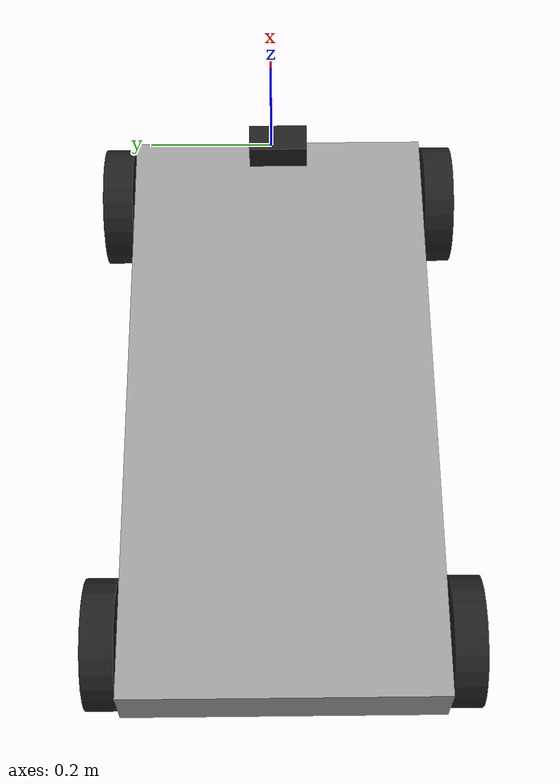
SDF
<?xml version='1.0'?>
<sdf version='1.6'>
  <model name='Robot'>
    <link name='link_0'>
      <pose frame=''>-0.395787 -0.010871 -0.185833 0 -0 0</pose>
      <inertial>
        <mass>1</mass>
        <inertia>
          <ixx>0.166667</ixx>
          <ixy>0</ixy>
          <ixz>0</ixz>
          <iyy>0.166667</iyy>
          <iyz>0</iyz>
          <izz>0.166667</izz>
        </inertia>
        <pose frame=''>0 0 0 0 -0 0</pose>
      </inertial>
      <self_collide>0</self_collide>
      <kinematic>0</kinematic>
      <gravity>1</gravity>
      <visual name='visual'>
        <pose frame=''>0 0 0 0 -0 0</pose>
        <geometry>
          <box>
            <size>1 0.5 0.1</size>
          </box>
        </geometry>
        <material>
          <lighting>1</lighting>
          <script>
            <uri>file://media/materials/scripts/gazebo.material</uri>
            <name>Gazebo/Grey</name>
          </script>
          <shader type='pixel'>
            <normal_map>__default__</normal_map>
          </shader>
          <ambient>0.5 0.5 0.5 1</ambient>
          <diffuse>0.5 0.5 0.5 1</diffuse>
          <specular>0.11 0.11 0.11 1</specular>
          <emissive>0 0 0 1</emissive>
        </material>
        <transparency>0</transparency>
        <cast_shadows>1</cast_shadows>
      </visual>
      <collision name='collision'>
        <laser_retro>0</laser_retro>
        <max_contacts>10</max_contacts>
        <pose frame=''>0 0 0 0 -0 0</pose>
        <geometry>
          <box>
            <size>1 0.5 0.1</size>
          </box>
        </geometry>
        <surface>
          <friction>
            <ode>
              <mu>1</mu>
              <mu2>1</mu2>
              <fdir1>0 0 0</fdir1>
              <slip1>0</slip1>
              <slip2>0</slip2>
            </ode>
            <torsional>
              <coefficient>1</coefficient>
              <patch_radius>0</patch_radius>
              <surface_radius>0</surface_radius>
              <use_patch_radius>1</use_patch_radius>
              <ode>
                <slip>0</slip>
              </ode>
            </torsional>
          </friction>
          <bounce>
            <restitution_coefficient>0</restitution_coefficient>
            <threshold>1e+06</threshold>
          </bounce>
          <contact>
            <collide_without_contact>0</collide_without_contact>
            <collide_without_contact_bitmask>1</collide_without_contact_bitmask>
            <collide_bitmask>1</collide_bitmask>
            <ode>
              <soft_cfm>0</soft_cfm>
              <soft_erp>0.2</soft_erp>
              <kp>1e+13</kp>
              <kd>1</kd>
              <max_vel>0.01</max_vel>
              <min_depth>0</min_depth>
            </ode>
            <bullet>
              <split_impulse>1</split_impulse>
              <split_impulse_penetration_threshold>-0.01</split_impulse_penetration_threshold>
              <soft_cfm>0</soft_cfm>
              <soft_erp>0.2</soft_erp>
              <kp>1e+13</kp>
              <kd>1</kd>
            </bullet>
          </contact>
        </surface>
      </collision>
    </link>
    <link name='link_1'>
      <pose frame=''>-0.795787 -0.285871 -0.185833 1.5708 -0 0</pose>
      <inertial>
        <mass>1</mass>
        <inertia>
          <ixx>0.145833</ixx>
          <ixy>0</ixy>
          <ixz>0</ixz>
          <iyy>0.145833</iyy>
          <iyz>0</iyz>
          <izz>0.125</izz>
        </inertia>
        <pose frame=''>0 0 0 0 -0 0</pose>
      </inertial>
      <self_collide>0</self_collide>
      <kinematic>0</kinematic>
      <visual name='visual'>
        <pose frame=''>0 0 0 0 -0 0</pose>
        <geometry>
          <cylinder>
            <radius>0.1</radius>
            <length>0.05</length>
          </cylinder>
        </geometry>
        <material>
          <lighting>1</lighting>
          <script>
            <uri>file://media/materials/scripts/gazebo.material</uri>
            <name>Gazebo/Black</name>
          </script>
          <shader type='pixel'>
            <normal_map>__default__</normal_map>
          </shader>
          <ambient>1 0.1 0.1 1</ambient>
          <diffuse>0.5 0.5 0.5 1</diffuse>
          <specular>0.01 0.01 0.01 1</specular>
          <emissive>0 0 0 1</emissive>
        </material>
        <transparency>0</transparency>
        <cast_shadows>1</cast_shadows>
      </visual>
      <collision name='collision'>
        <laser_retro>0</laser_retro>
        <max_contacts>10</max_contacts>
        <pose frame=''>0 0 0 0 -0 0</pose>
        <geometry>
          <cylinder>
            <radius>0.1</radius>
            <length>0.05</length>
          </cylinder>
        </geometry>
        <surface>
          <friction>
            <ode>
              <mu>1</mu>
              <mu2>1</mu2>
              <fdir1>0 0 0</fdir1>
              <slip1>0</slip1>
              <slip2>0</slip2>
            </ode>
            <torsional>
              <coefficient>1</coefficient>
              <patch_radius>0</patch_radius>
              <surface_radius>0</surface_radius>
              <use_patch_radius>1</use_patch_radius>
              <ode>
                <slip>0</slip>
              </ode>
            </torsional>
          </friction>
          <bounce>
            <restitution_coefficient>0</restitution_coefficient>
            <threshold>1e+06</threshold>
          </bounce>
          <contact>
            <collide_without_contact>0</collide_without_contact>
            <collide_without_contact_bitmask>1</collide_without_contact_bitmask>
            <collide_bitmask>1</collide_bitmask>
            <ode>
              <soft_cfm>0</soft_cfm>
              <soft_erp>0.2</soft_erp>
              <kp>1e+13</kp>
              <kd>1</kd>
              <max_vel>0.01</max_vel>
              <min_depth>0</min_depth>
            </ode>
            <bullet>
              <split_impulse>1</split_impulse>
              <split_impulse_penetration_threshold>-0.01</split_impulse_penetration_threshold>
              <soft_cfm>0</soft_cfm>
              <soft_erp>0.2</soft_erp>
              <kp>1e+13</kp>
              <kd>1</kd>
            </bullet>
          </contact>
        </surface>
      </collision>
    </link>
    <link name='link_1_clone'>
      <pose frame=''>0.004213 0.264129 -0.185833 1.5708 -0 0</pose>
      <inertial>
        <mass>1</mass>
        <inertia>
          <ixx>0.145833</ixx>
          <ixy>0</ixy>
          <ixz>0</ixz>
          <iyy>0.145833</iyy>
          <iyz>0</iyz>
          <izz>0.125</izz>
        </inertia>
        <pose frame=''>0 0 0 0 -0 0</pose>
      </inertial>
      <self_collide>0</self_collide>
      <kinematic>0</kinematic>
      <visual name='visual'>
        <pose frame=''>0 0 0 0 -0 0</pose>
        <geometry>
          <cylinder>
            <radius>0.1</radius>
            <length>0.05</length>
          </cylinder>
        </geometry>
        <material>
          <lighting>1</lighting>
          <script>
            <uri>file://media/materials/scripts/gazebo.material</uri>
            <name>Gazebo/Black</name>
          </script>
          <shader type='pixel'>
            <normal_map>__default__</normal_map>
          </shader>
          <ambient>1 0.1 0.1 1</ambient>
          <diffuse>0.5 0.5 0.5 1</diffuse>
          <specular>0.01 0.01 0.01 1</specular>
          <emissive>0 0 0 1</emissive>
        </material>
        <transparency>0</transparency>
        <cast_shadows>1</cast_shadows>
      </visual>
      <collision name='collision'>
        <laser_retro>0</laser_retro>
        <max_contacts>10</max_contacts>
        <pose frame=''>0 0 0 0 -0 0</pose>
        <geometry>
          <cylinder>
            <radius>0.1</radius>
            <length>0.05</length>
          </cylinder>
        </geometry>
        <surface>
          <friction>
            <ode>
              <mu>1</mu>
              <mu2>1</mu2>
              <fdir1>0 0 0</fdir1>
              <slip1>0</slip1>
              <slip2>0</slip2>
            </ode>
            <torsional>
              <coefficient>1</coefficient>
              <patch_radius>0</patch_radius>
              <surface_radius>0</surface_radius>
              <use_patch_radius>1</use_patch_radius>
              <ode>
                <slip>0</slip>
              </ode>
            </torsional>
          </friction>
          <bounce>
            <restitution_coefficient>0</restitution_coefficient>
            <threshold>1e+06</threshold>
          </bounce>
          <contact>
            <collide_without_contact>0</collide_without_contact>
            <collide_without_contact_bitmask>1</collide_without_contact_bitmask>
            <collide_bitmask>1</collide_bitmask>
            <ode>
              <soft_cfm>0</soft_cfm>
              <soft_erp>0.2</soft_erp>
              <kp>1e+13</kp>
              <kd>1</kd>
              <max_vel>0.01</max_vel>
              <min_depth>0</min_depth>
            </ode>
            <bullet>
              <split_impulse>1</split_impulse>
              <split_impulse_penetration_threshold>-0.01</split_impulse_penetration_threshold>
              <soft_cfm>0</soft_cfm>
              <soft_erp>0.2</soft_erp>
              <kp>1e+13</kp>
              <kd>1</kd>
            </bullet>
          </contact>
        </surface>
      </collision>
    </link>
    <link name='link_1_clone_0'>
      <pose frame=''>0.004213 -0.285871 -0.185833 1.5708 -0 0</pose>
      <inertial>
        <mass>1</mass>
        <inertia>
          <ixx>0.145833</ixx>
          <ixy>0</ixy>
          <ixz>0</ixz>
          <iyy>0.145833</iyy>
          <iyz>0</iyz>
          <izz>0.125</izz>
        </inertia>
        <pose frame=''>0 0 0 0 -0 0</pose>
      </inertial>
      <self_collide>0</self_collide>
      <kinematic>0</kinematic>
      <visual name='visual'>
        <pose frame=''>0 0 0 0 -0 0</pose>
        <geometry>
          <cylinder>
            <radius>0.1</radius>
            <length>0.05</length>
          </cylinder>
        </geometry>
        <material>
          <lighting>1</lighting>
          <script>
            <uri>file://media/materials/scripts/gazebo.material</uri>
            <name>Gazebo/Black</name>
          </script>
          <shader type='pixel'>
            <normal_map>__default__</normal_map>
          </shader>
          <ambient>1 0.1 0.1 1</ambient>
          <diffuse>0.5 0.5 0.5 1</diffuse>
          <specular>0.01 0.01 0.01 1</specular>
          <emissive>0 0 0 1</emissive>
        </material>
        <transparency>0</transparency>
        <cast_shadows>1</cast_shadows>
      </visual>
      <collision name='collision'>
        <laser_retro>0</laser_retro>
        <max_contacts>10</max_contacts>
        <pose frame=''>0 0 0 0 -0 0</pose>
        <geometry>
          <cylinder>
            <radius>0.1</radius>
            <length>0.05</length>
          </cylinder>
        </geometry>
        <surface>
          <friction>
            <ode>
              <mu>1</mu>
              <mu2>1</mu2>
              <fdir1>0 0 0</fdir1>
              <slip1>0</slip1>
              <slip2>0</slip2>
            </ode>
            <torsional>
              <coefficient>1</coefficient>
              <patch_radius>0</patch_radius>
              <surface_radius>0</surface_radius>
              <use_patch_radius>1</use_patch_radius>
              <ode>
                <slip>0</slip>
              </ode>
            </torsional>
          </friction>
          <bounce>
            <restitution_coefficient>0</restitution_coefficient>
            <threshold>1e+06</threshold>
          </bounce>
          <contact>
            <collide_without_contact>0</collide_without_contact>
            <collide_without_contact_bitmask>1</collide_without_contact_bitmask>
            <collide_bitmask>1</collide_bitmask>
            <ode>
              <soft_cfm>0</soft_cfm>
              <soft_erp>0.2</soft_erp>
              <kp>1e+13</kp>
              <kd>1</kd>
              <max_vel>0.01</max_vel>
              <min_depth>0</min_depth>
            </ode>
            <bullet>
              <split_impulse>1</split_impulse>
              <split_impulse_penetration_threshold>-0.01</split_impulse_penetration_threshold>
              <soft_cfm>0</soft_cfm>
              <soft_erp>0.2</soft_erp>
              <kp>1e+13</kp>
              <kd>1</kd>
            </bullet>
          </contact>
        </surface>
      </collision>
    </link>
    <link name='link_1_clone_1'>
      <pose frame=''>-0.795787 0.264129 -0.185833 1.5708 -0 0</pose>
      <inertial>
        <mass>1</mass>
        <inertia>
          <ixx>0.145833</ixx>
          <ixy>0</ixy>
          <ixz>0</ixz>
          <iyy>0.145833</iyy>
          <iyz>0</iyz>
          <izz>0.125</izz>
        </inertia>
        <pose frame=''>0 0 0 0 -0 0</pose>
      </inertial>
      <self_collide>0</self_collide>
      <kinematic>0</kinematic>
      <visual name='visual'>
        <pose frame=''>0 0 0 0 -0 0</pose>
        <geometry>
          <cylinder>
            <radius>0.1</radius>
            <length>0.05</length>
          </cylinder>
        </geometry>
        <material>
          <lighting>1</lighting>
          <script>
            <uri>file://media/materials/scripts/gazebo.material</uri>
            <name>Gazebo/Black</name>
          </script>
          <shader type='pixel'>
            <normal_map>__default__</normal_map>
          </shader>
          <ambient>1 0.1 0.1 1</ambient>
          <diffuse>0.5 0.5 0.5 1</diffuse>
          <specular>0.01 0.01 0.01 1</specular>
          <emissive>0 0 0 1</emissive>
        </material>
        <transparency>0</transparency>
        <cast_shadows>1</cast_shadows>
      </visual>
      <collision name='collision'>
        <laser_retro>0</laser_retro>
        <max_contacts>10</max_contacts>
        <pose frame=''>0 0 0 0 -0 0</pose>
        <geometry>
          <cylinder>
            <radius>0.1</radius>
            <length>0.05</length>
          </cylinder>
        </geometry>
        <surface>
          <friction>
            <ode>
              <mu>1</mu>
              <mu2>1</mu2>
              <fdir1>0 0 0</fdir1>
              <slip1>0</slip1>
              <slip2>0</slip2>
            </ode>
            <torsional>
              <coefficient>1</coefficient>
              <patch_radius>0</patch_radius>
              <surface_radius>0</surface_radius>
              <use_patch_radius>1</use_patch_radius>
              <ode>
                <slip>0</slip>
              </ode>
            </torsional>
          </friction>
          <bounce>
            <restitution_coefficient>0</restitution_coefficient>
            <threshold>1e+06</threshold>
          </bounce>
          <contact>
            <collide_without_contact>0</collide_without_contact>
            <collide_without_contact_bitmask>1</collide_without_contact_bitmask>
            <collide_bitmask>1</collide_bitmask>
            <ode>
              <soft_cfm>0</soft_cfm>
              <soft_erp>0.2</soft_erp>
              <kp>1e+13</kp>
              <kd>1</kd>
              <max_vel>0.01</max_vel>
              <min_depth>0</min_depth>
            </ode>
            <bullet>
              <split_impulse>1</split_impulse>
              <split_impulse_penetration_threshold>-0.01</split_impulse_penetration_threshold>
              <soft_cfm>0</soft_cfm>
              <soft_erp>0.2</soft_erp>
              <kp>1e+13</kp>
              <kd>1</kd>
            </bullet>
          </contact>
        </surface>
      </collision>
    </link>
    <link name='link_2'>
      <pose frame=''>0.079213 -0.010871 -0.110833 0 -0 0</pose>
      <inertial>
        <mass>1</mass>
        <inertia>
          <ixx>0.166667</ixx>
          <ixy>0</ixy>
          <ixz>0</ixz>
          <iyy>0.166667</iyy>
          <iyz>0</iyz>
          <izz>0.166667</izz>
        </inertia>
        <pose frame=''>0 0 0 0 -0 0</pose>
      </inertial>
      <self_collide>0</self_collide>
      <kinematic>0</kinematic>
      <visual name='visual'>
        <pose frame=''>0 0 0 0 -0 0</pose>
        <geometry>
          <box>
            <size>0.05 0.1 0.05</size>
          </box>
        </geometry>
        <material>
          <lighting>1</lighting>
          <script>
            <uri>file://media/materials/scripts/gazebo.material</uri>
            <name>Gazebo/Black</name>
          </script>
          <shader type='pixel'>
            <normal_map>__default__</normal_map>
          </shader>
          <ambient>0 1 1 1</ambient>
          <diffuse>0 0 0 1</diffuse>
          <specular>0 0 0 1</specular>
          <emissive>0 0 0 1</emissive>
        </material>
        <transparency>0</transparency>
        <cast_shadows>1</cast_shadows>
      </visual>
      <collision name='collision'>
        <laser_retro>0</laser_retro>
        <max_contacts>10</max_contacts>
        <pose frame=''>0 0 0 0 -0 0</pose>
        <geometry>
          <box>
            <size>0.05 0.1 0.05</size>
          </box>
        </geometry>
        <surface>
          <friction>
            <ode>
              <mu>1</mu>
              <mu2>1</mu2>
              <fdir1>0 0 0</fdir1>
              <slip1>0</slip1>
              <slip2>0</slip2>
            </ode>
            <torsional>
              <coefficient>1</coefficient>
              <patch_radius>0</patch_radius>
              <surface_radius>0</surface_radius>
              <use_patch_radius>1</use_patch_radius>
              <ode>
                <slip>0</slip>
              </ode>
            </torsional>
          </friction>
          <bounce>
            <restitution_coefficient>0</restitution_coefficient>
            <threshold>1e+06</threshold>
          </bounce>
          <contact>
            <collide_without_contact>0</collide_without_contact>
            <collide_without_contact_bitmask>1</collide_without_contact_bitmask>
            <collide_bitmask>1</collide_bitmask>
            <ode>
              <soft_cfm>0</soft_cfm>
              <soft_erp>0.2</soft_erp>
              <kp>1e+13</kp>
              <kd>1</kd>
              <max_vel>0.01</max_vel>
              <min_depth>0</min_depth>
            </ode>
            <bullet>
              <split_impulse>1</split_impulse>
              <split_impulse_penetration_threshold>-0.01</split_impulse_penetration_threshold>
              <soft_cfm>0</soft_cfm>
              <soft_erp>0.2</soft_erp>
              <kp>1e+13</kp>
              <kd>1</kd>
            </bullet>
          </contact>
        </surface>
      </collision>
    </link>
    <joint name='link_0_JOINT_2' type='revolute'>
      <parent>link_0</parent>
      <child>link_1</child>
      <pose frame=''>0 0 0 0 -0 0</pose>
      <axis>
        <xyz>0 0 1</xyz>
        <use_parent_model_frame>0</use_parent_model_frame>
        <limit>
          <lower>-1.79769e+308</lower>
          <upper>1.79769e+308</upper>
          <effort>-1</effort>
          <velocity>-1</velocity>
        </limit>
        <dynamics>
          <spring_reference>0</spring_reference>
          <spring_stiffness>0</spring_stiffness>
          <damping>0</damping>
          <friction>0</friction>
        </dynamics>
      </axis>
      <physics>
        <ode>
          <limit>
            <cfm>0</cfm>
            <erp>0.2</erp>
          </limit>
          <suspension>
            <cfm>0</cfm>
            <erp>0.2</erp>
          </suspension>
        </ode>
      </physics>
    </joint>
    <joint name='link_0_JOINT_3' type='revolute'>
      <parent>link_0</parent>
      <child>link_1_clone_1</child>
      <pose frame=''>0 0 0 0 -0 0</pose>
      <axis>
        <xyz>1 0 0</xyz>
        <use_parent_model_frame>0</use_parent_model_frame>
        <limit>
          <lower>-1.79769e+308</lower>
          <upper>1.79769e+308</upper>
          <effort>-1</effort>
          <velocity>-1</velocity>
        </limit>
        <dynamics>
          <spring_reference>0</spring_reference>
          <spring_stiffness>0</spring_stiffness>
          <damping>0</damping>
          <friction>0</friction>
        </dynamics>
      </axis>
      <physics>
        <ode>
          <limit>
            <cfm>0</cfm>
            <erp>0.2</erp>
          </limit>
          <suspension>
            <cfm>0</cfm>
            <erp>0.2</erp>
          </suspension>
        </ode>
      </physics>
    </joint>
    <joint name='link_0_JOINT_4' type='revolute2'>
      <parent>link_0</parent>
      <child>link_1_clone_0</child>
      <pose frame=''>0 0 0 0 -0 0</pose>
      <axis>
        <xyz>0 0 1</xyz>
        <use_parent_model_frame>0</use_parent_model_frame>
        <limit>
          <lower>-1.79769e+308</lower>
          <upper>1.79769e+308</upper>
          <effort>-1</effort>
          <velocity>-1</velocity>
        </limit>
        <dynamics>
          <spring_reference>0</spring_reference>
          <spring_stiffness>0</spring_stiffness>
          <damping>0</damping>
          <friction>0</friction>
        </dynamics>
      </axis>
      <axis2>
        <xyz>0 1 0</xyz>
        <use_parent_model_frame>0</use_parent_model_frame>
        <dynamics>
          <spring_reference>0</spring_reference>
          <spring_stiffness>0</spring_stiffness>
          <damping>0</damping>
          <friction>0</friction>
        </dynamics>
        <limit>
          <lower>-1.79769e+308</lower>
          <upper>1.79769e+308</upper>
          <effort>-1</effort>
          <velocity>-1</velocity>
        </limit>
      </axis2>
      <physics>
        <ode>
          <limit>
            <cfm>0</cfm>
            <erp>0.2</erp>
          </limit>
          <suspension>
            <cfm>0</cfm>
            <erp>0.2</erp>
          </suspension>
        </ode>
      </physics>
    </joint>
    <joint name='link_0_JOINT_5' type='revolute2'>
      <parent>link_0</parent>
      <child>link_1_clone</child>
      <pose frame=''>0 0 0 0 -0 0</pose>
      <axis>
        <xyz>0 0 1</xyz>
        <use_parent_model_frame>0</use_parent_model_frame>
        <limit>
          <lower>-1.79769e+308</lower>
          <upper>1.79769e+308</upper>
          <effort>-1</effort>
          <velocity>-1</velocity>
        </limit>
        <dynamics>
          <spring_reference>0</spring_reference>
          <spring_stiffness>0</spring_stiffness>
          <damping>0</damping>
          <friction>0</friction>
        </dynamics>
      </axis>
      <axis2>
        <xyz>0 1 0</xyz>
        <use_parent_model_frame>0</use_parent_model_frame>
        <dynamics>
          <spring_reference>0</spring_reference>
          <spring_stiffness>0</spring_stiffness>
          <damping>0</damping>
          <friction>0</friction>
        </dynamics>
        <limit>
          <lower>-1.79769e+308</lower>
          <upper>1.79769e+308</upper>
          <effort>-1</effort>
          <velocity>-1</velocity>
        </limit>
      </axis2>
      <physics>
        <ode>
          <limit>
            <cfm>0</cfm>
            <erp>0.2</erp>
          </limit>
          <suspension>
            <cfm>0</cfm>
            <erp>0.2</erp>
          </suspension>
        </ode>
      </physics>
    </joint>
    <joint name='link_0_JOINT_6' type='fixed'>
      <parent>link_0</parent>
      <child>link_2</child>
      <pose frame=''>0 0 0 0 -0 0</pose>
      <physics>
        <ode>
          <limit>
            <cfm>0</cfm>
            <erp>0.2</erp>
          </limit>
          <suspension>
            <cfm>0</cfm>
            <erp>0.2</erp>
          </suspension>
        </ode>
      </physics>
    </joint>
    <static>0</static>
    <allow_auto_disable>1</allow_auto_disable>
  </model>
</sdf>
